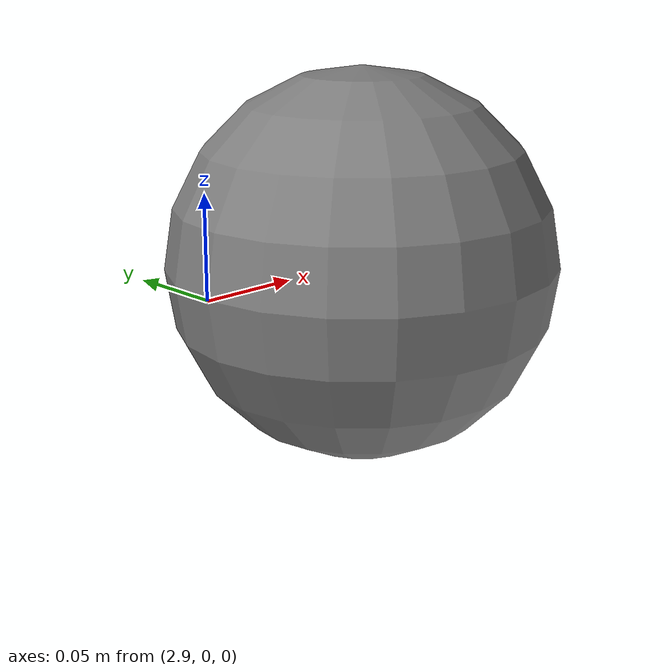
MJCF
<mujoco>
                <worldbody>
                    <body name="parent">
                        <frame pos="2 0 0">
                            <body name="child" pos="1 0 0">
                                <geom type="sphere" size="0.1"/>
                            </body>
                        </frame>
                    </body>
                </worldbody>
            </mujoco>
